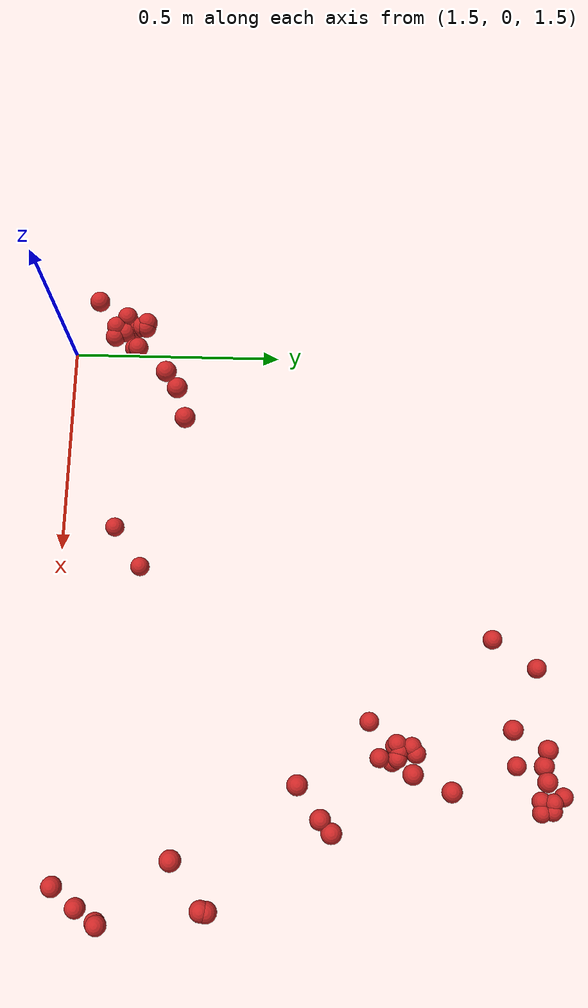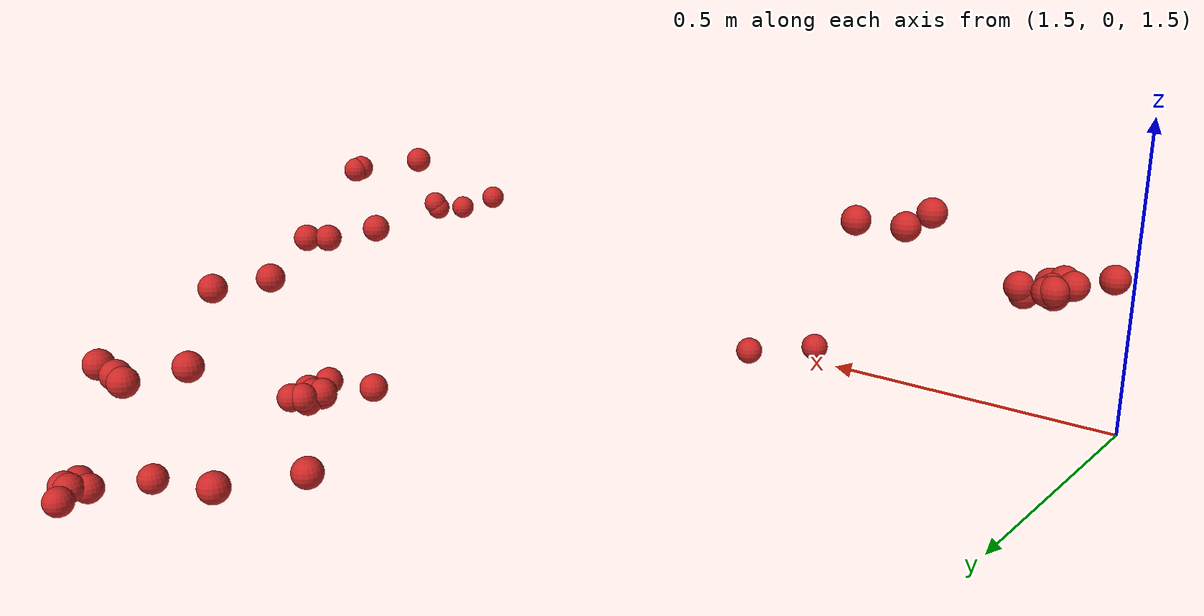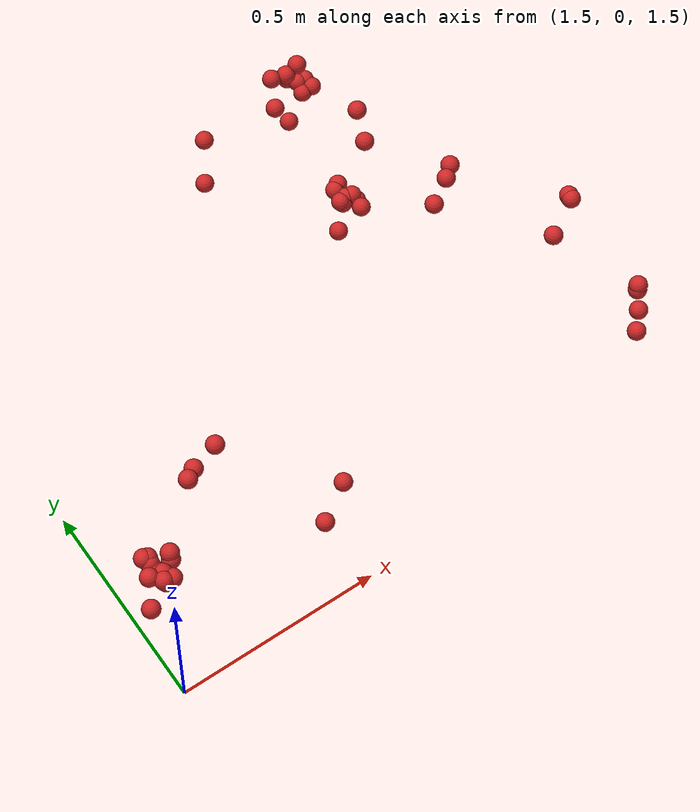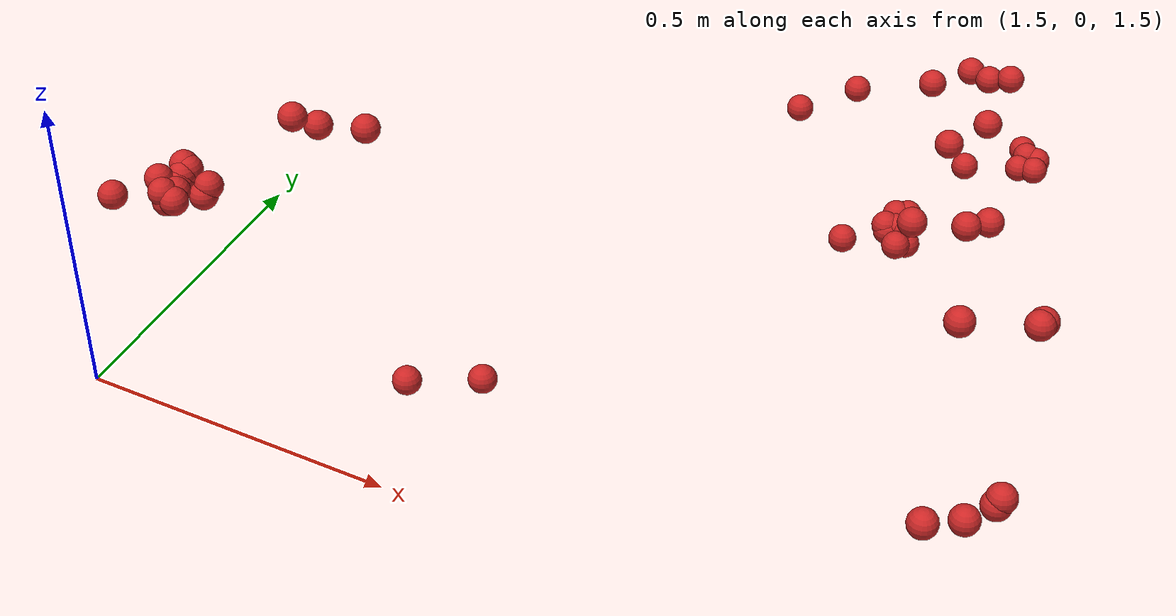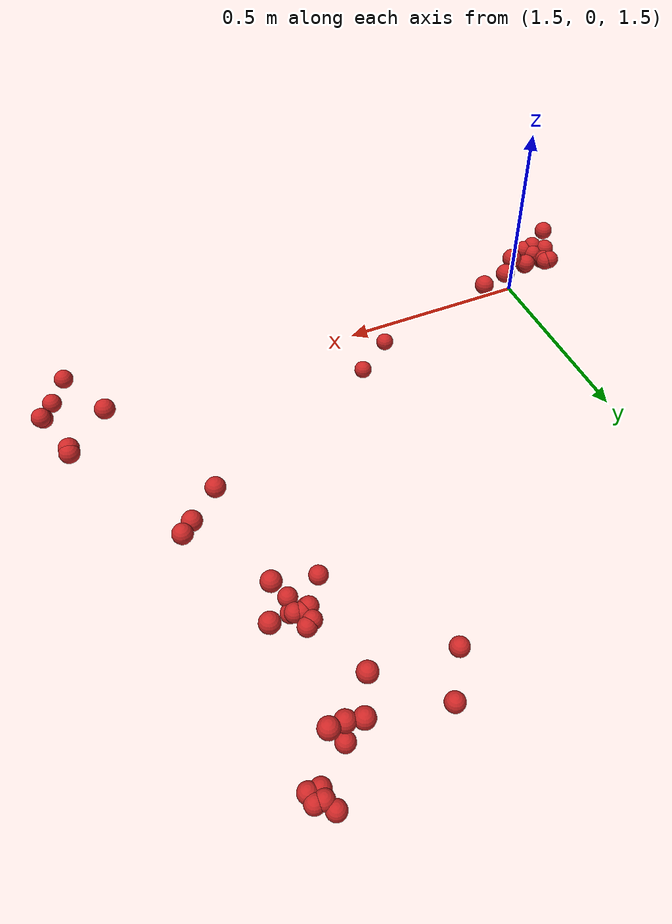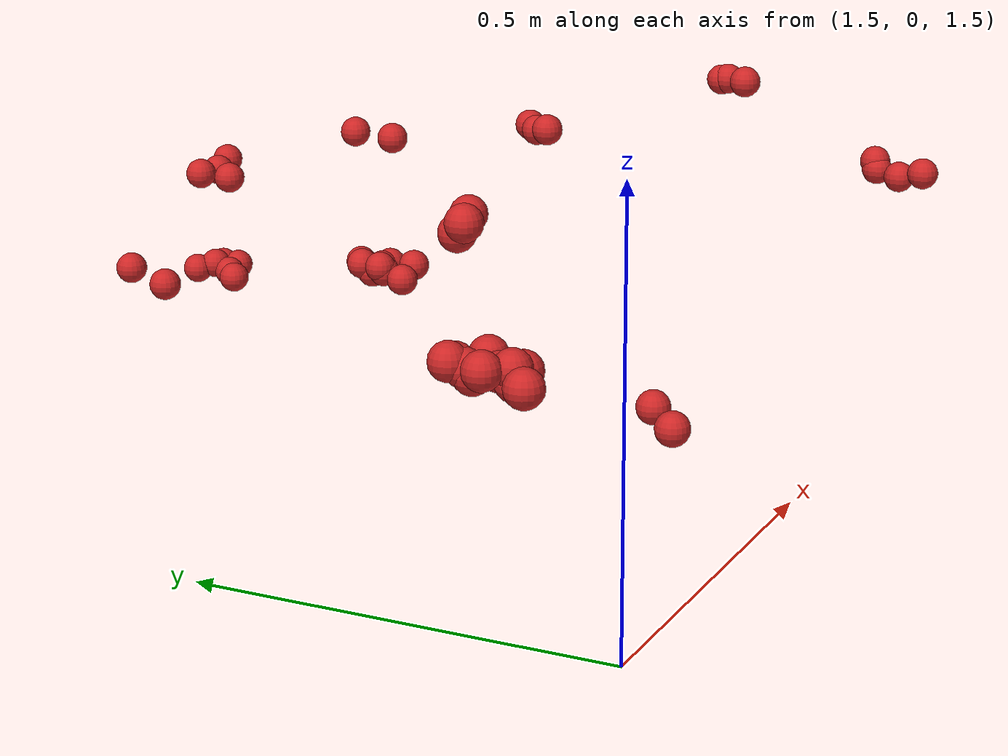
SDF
<sdf version="1.4">
 <model name="fruit_population">
  <static>true</static>
  <link name="fruit_9">
   <pose>2.5626314232241145 0.576750145010323 1.779110310020677 0 0 0</pose>
   <collision name="fruit_collision_9"><geometry><sphere><radius>0.022</radius></sphere></geometry></collision>
   <visual name="visual">
    <geometry><sphere><radius>0.022</radius></sphere></geometry>
    <material><script><name>Gazebo/Red</name></script></material>
   </visual>
   <inertial>
    <mass>0.05</mass>
    <inertia>
     <ixx>9.679999999999999e-06</ixx>
     <ixy>0.0</ixy>
     <ixz>0.0</ixz>
     <iyy>9.679999999999999e-06</iyy>
     <iyz>0.0</iyz>
     <izz>9.679999999999999e-06</izz>
    </inertia>
   </inertial>
   <sensor name="fruit_contact_9" type="contact">
    <plugin name="contact_plugin_9" filename="libcontact_plugin.so"/>
    <contact><collision>fruit_collision_9</collision><topic>fruit_contact_topic_9</topic></contact>
   </sensor>
  </link>
  <link name="fruit_29">
   <pose>1.4982217485301565 0.1065768968228695 1.7779275754086676 0 0 0</pose>
   <collision name="fruit_collision_29"><geometry><sphere><radius>0.022</radius></sphere></geometry></collision>
   <visual name="visual">
    <geometry><sphere><radius>0.022</radius></sphere></geometry>
    <material><script><name>Gazebo/Red</name></script></material>
   </visual>
   <inertial>
    <mass>0.05</mass>
    <inertia>
     <ixx>9.679999999999999e-06</ixx>
     <ixy>0.0</ixy>
     <ixz>0.0</ixz>
     <iyy>9.679999999999999e-06</iyy>
     <iyz>0.0</iyz>
     <izz>9.679999999999999e-06</izz>
    </inertia>
   </inertial>
   <sensor name="fruit_contact_29" type="contact">
    <plugin name="contact_plugin_29" filename="libcontact_plugin.so"/>
    <contact><collision>fruit_collision_29</collision><topic>fruit_contact_topic_29</topic></contact>
   </sensor>
  </link>
  <link name="fruit_32">
   <pose>2.773640843867093 0.08156298062234327 1.7195370686008618 0 0 0</pose>
   <collision name="fruit_collision_32"><geometry><sphere><radius>0.022</radius></sphere></geometry></collision>
   <visual name="visual">
    <geometry><sphere><radius>0.022</radius></sphere></geometry>
    <material><script><name>Gazebo/Red</name></script></material>
   </visual>
   <inertial>
    <mass>0.05</mass>
    <inertia>
     <ixx>9.679999999999999e-06</ixx>
     <ixy>0.0</ixy>
     <ixz>0.0</ixz>
     <iyy>9.679999999999999e-06</iyy>
     <iyz>0.0</iyz>
     <izz>9.679999999999999e-06</izz>
    </inertia>
   </inertial>
   <sensor name="fruit_contact_32" type="contact">
    <plugin name="contact_plugin_32" filename="libcontact_plugin.so"/>
    <contact><collision>fruit_collision_32</collision><topic>fruit_contact_topic_32</topic></contact>
   </sensor>
  </link>
  <link name="fruit_34">
   <pose>2.2146407793347493 1.006819930641305 1.5859462063233678 0 0 0</pose>
   <collision name="fruit_collision_34"><geometry><sphere><radius>0.022</radius></sphere></geometry></collision>
   <visual name="visual">
    <geometry><sphere><radius>0.022</radius></sphere></geometry>
    <material><script><name>Gazebo/Red</name></script></material>
   </visual>
   <inertial>
    <mass>0.05</mass>
    <inertia>
     <ixx>9.679999999999999e-06</ixx>
     <ixy>0.0</ixy>
     <ixz>0.0</ixz>
     <iyy>9.679999999999999e-06</iyy>
     <iyz>0.0</iyz>
     <izz>9.679999999999999e-06</izz>
    </inertia>
   </inertial>
   <sensor name="fruit_contact_34" type="contact">
    <plugin name="contact_plugin_34" filename="libcontact_plugin.so"/>
    <contact><collision>fruit_collision_34</collision><topic>fruit_contact_topic_34</topic></contact>
   </sensor>
  </link>
  <link name="fruit_62">
   <pose>2.430587982907072 1.031769929831832 1.6901392343844412 0 0 0</pose>
   <collision name="fruit_collision_62"><geometry><sphere><radius>0.022</radius></sphere></geometry></collision>
   <visual name="visual">
    <geometry><sphere><radius>0.022</radius></sphere></geometry>
    <material><script><name>Gazebo/Red</name></script></material>
   </visual>
   <inertial>
    <mass>0.05</mass>
    <inertia>
     <ixx>9.679999999999999e-06</ixx>
     <ixy>0.0</ixy>
     <ixz>0.0</ixz>
     <iyy>9.679999999999999e-06</iyy>
     <iyz>0.0</iyz>
     <izz>9.679999999999999e-06</izz>
    </inertia>
   </inertial>
   <sensor name="fruit_contact_62" type="contact">
    <plugin name="contact_plugin_62" filename="libcontact_plugin.so"/>
    <contact><collision>fruit_collision_62</collision><topic>fruit_contact_topic_62</topic></contact>
   </sensor>
  </link>
  <link name="fruit_102">
   <pose>1.9671314398106239 0.1367502395650192 1.5815034556386387 0 0 0</pose>
   <collision name="fruit_collision_102"><geometry><sphere><radius>0.022</radius></sphere></geometry></collision>
   <visual name="visual">
    <geometry><sphere><radius>0.022</radius></sphere></geometry>
    <material><script><name>Gazebo/Red</name></script></material>
   </visual>
   <inertial>
    <mass>0.05</mass>
    <inertia>
     <ixx>9.679999999999999e-06</ixx>
     <ixy>0.0</ixy>
     <ixz>0.0</ixz>
     <iyy>9.679999999999999e-06</iyy>
     <iyz>0.0</iyz>
     <izz>9.679999999999999e-06</izz>
    </inertia>
   </inertial>
   <sensor name="fruit_contact_102" type="contact">
    <plugin name="contact_plugin_102" filename="libcontact_plugin.so"/>
    <contact><collision>fruit_collision_102</collision><topic>fruit_contact_topic_102</topic></contact>
   </sensor>
  </link>
  <link name="fruit_104">
   <pose>1.7086699702461206 0.27829057306447336 1.876934904414292 0 0 0</pose>
   <collision name="fruit_collision_104"><geometry><sphere><radius>0.022</radius></sphere></geometry></collision>
   <visual name="visual">
    <geometry><sphere><radius>0.022</radius></sphere></geometry>
    <material><script><name>Gazebo/Red</name></script></material>
   </visual>
   <inertial>
    <mass>0.05</mass>
    <inertia>
     <ixx>9.679999999999999e-06</ixx>
     <ixy>0.0</ixy>
     <ixz>0.0</ixz>
     <iyy>9.679999999999999e-06</iyy>
     <iyz>0.0</iyz>
     <izz>9.679999999999999e-06</izz>
    </inertia>
   </inertial>
   <sensor name="fruit_contact_104" type="contact">
    <plugin name="contact_plugin_104" filename="libcontact_plugin.so"/>
    <contact><collision>fruit_collision_104</collision><topic>fruit_contact_topic_104</topic></contact>
   </sensor>
  </link>
  <link name="fruit_108">
   <pose>2.7177063027029877 0.3345681849045983 1.8416136712781808 0 0 0</pose>
   <collision name="fruit_collision_108"><geometry><sphere><radius>0.022</radius></sphere></geometry></collision>
   <visual name="visual">
    <geometry><sphere><radius>0.022</radius></sphere></geometry>
    <material><script><name>Gazebo/Red</name></script></material>
   </visual>
   <inertial>
    <mass>0.05</mass>
    <inertia>
     <ixx>9.679999999999999e-06</ixx>
     <ixy>0.0</ixy>
     <ixz>0.0</ixz>
     <iyy>9.679999999999999e-06</iyy>
     <iyz>0.0</iyz>
     <izz>9.679999999999999e-06</izz>
    </inertia>
   </inertial>
   <sensor name="fruit_contact_108" type="contact">
    <plugin name="contact_plugin_108" filename="libcontact_plugin.so"/>
    <contact><collision>fruit_collision_108</collision><topic>fruit_contact_topic_108</topic></contact>
   </sensor>
  </link>
  <link name="fruit_134">
   <pose>2.405121900138279 0.7311783697112243 1.5769891274892416 0 0 0</pose>
   <collision name="fruit_collision_134"><geometry><sphere><radius>0.022</radius></sphere></geometry></collision>
   <visual name="visual">
    <geometry><sphere><radius>0.022</radius></sphere></geometry>
    <material><script><name>Gazebo/Red</name></script></material>
   </visual>
   <inertial>
    <mass>0.05</mass>
    <inertia>
     <ixx>9.679999999999999e-06</ixx>
     <ixy>0.0</ixy>
     <ixz>0.0</ixz>
     <iyy>9.679999999999999e-06</iyy>
     <iyz>0.0</iyz>
     <izz>9.679999999999999e-06</izz>
    </inertia>
   </inertial>
   <sensor name="fruit_contact_134" type="contact">
    <plugin name="contact_plugin_134" filename="libcontact_plugin.so"/>
    <contact><collision>fruit_collision_134</collision><topic>fruit_contact_topic_134</topic></contact>
   </sensor>
  </link>
  <link name="fruit_169">
   <pose>2.5339544847992377 0.8138170823752459 1.7497595894083253 0 0 0</pose>
   <collision name="fruit_collision_169"><geometry><sphere><radius>0.022</radius></sphere></geometry></collision>
   <visual name="visual">
    <geometry><sphere><radius>0.022</radius></sphere></geometry>
    <material><script><name>Gazebo/Red</name></script></material>
   </visual>
   <inertial>
    <mass>0.05</mass>
    <inertia>
     <ixx>9.679999999999999e-06</ixx>
     <ixy>0.0</ixy>
     <ixz>0.0</ixz>
     <iyy>9.679999999999999e-06</iyy>
     <iyz>0.0</iyz>
     <izz>9.679999999999999e-06</izz>
    </inertia>
   </inertial>
   <sensor name="fruit_contact_169" type="contact">
    <plugin name="contact_plugin_169" filename="libcontact_plugin.so"/>
    <contact><collision>fruit_collision_169</collision><topic>fruit_contact_topic_169</topic></contact>
   </sensor>
  </link>
  <link name="fruit_175">
   <pose>2.4907886971746085 1.0678652874753367 1.5176497441475838 0 0 0</pose>
   <collision name="fruit_collision_175"><geometry><sphere><radius>0.022</radius></sphere></geometry></collision>
   <visual name="visual">
    <geometry><sphere><radius>0.022</radius></sphere></geometry>
    <material><script><name>Gazebo/Red</name></script></material>
   </visual>
   <inertial>
    <mass>0.05</mass>
    <inertia>
     <ixx>9.679999999999999e-06</ixx>
     <ixy>0.0</ixy>
     <ixz>0.0</ixz>
     <iyy>9.679999999999999e-06</iyy>
     <iyz>0.0</iyz>
     <izz>9.679999999999999e-06</izz>
    </inertia>
   </inertial>
   <sensor name="fruit_contact_175" type="contact">
    <plugin name="contact_plugin_175" filename="libcontact_plugin.so"/>
    <contact><collision>fruit_collision_175</collision><topic>fruit_contact_topic_175</topic></contact>
   </sensor>
  </link>
  <link name="fruit_193">
   <pose>1.554552033863132 0.1916454480963932 1.763139146387887 0 0 0</pose>
   <collision name="fruit_collision_193"><geometry><sphere><radius>0.022</radius></sphere></geometry></collision>
   <visual name="visual">
    <geometry><sphere><radius>0.022</radius></sphere></geometry>
    <material><script><name>Gazebo/Red</name></script></material>
   </visual>
   <inertial>
    <mass>0.05</mass>
    <inertia>
     <ixx>9.679999999999999e-06</ixx>
     <ixy>0.0</ixy>
     <ixz>0.0</ixz>
     <iyy>9.679999999999999e-06</iyy>
     <iyz>0.0</iyz>
     <izz>9.679999999999999e-06</izz>
    </inertia>
   </inertial>
   <sensor name="fruit_contact_193" type="contact">
    <plugin name="contact_plugin_193" filename="libcontact_plugin.so"/>
    <contact><collision>fruit_collision_193</collision><topic>fruit_contact_topic_193</topic></contact>
   </sensor>
  </link>
  <link name="fruit_196">
   <pose>1.805355579392856 0.32119392716852213 1.8596846636371498 0 0 0</pose>
   <collision name="fruit_collision_196"><geometry><sphere><radius>0.022</radius></sphere></geometry></collision>
   <visual name="visual">
    <geometry><sphere><radius>0.022</radius></sphere></geometry>
    <material><script><name>Gazebo/Red</name></script></material>
   </visual>
   <inertial>
    <mass>0.05</mass>
    <inertia>
     <ixx>9.679999999999999e-06</ixx>
     <ixy>0.0</ixy>
     <ixz>0.0</ixz>
     <iyy>9.679999999999999e-06</iyy>
     <iyz>0.0</iyz>
     <izz>9.679999999999999e-06</izz>
    </inertia>
   </inertial>
   <sensor name="fruit_contact_196" type="contact">
    <plugin name="contact_plugin_196" filename="libcontact_plugin.so"/>
    <contact><collision>fruit_collision_196</collision><topic>fruit_contact_topic_196</topic></contact>
   </sensor>
  </link>
  <link name="fruit_216">
   <pose>2.4571109393866153 0.7895898293658358 1.5695596956966684 0 0 0</pose>
   <collision name="fruit_collision_216"><geometry><sphere><radius>0.022</radius></sphere></geometry></collision>
   <visual name="visual">
    <geometry><sphere><radius>0.022</radius></sphere></geometry>
    <material><script><name>Gazebo/Red</name></script></material>
   </visual>
   <inertial>
    <mass>0.05</mass>
    <inertia>
     <ixx>9.679999999999999e-06</ixx>
     <ixy>0.0</ixy>
     <ixz>0.0</ixz>
     <iyy>9.679999999999999e-06</iyy>
     <iyz>0.0</iyz>
     <izz>9.679999999999999e-06</izz>
    </inertia>
   </inertial>
   <sensor name="fruit_contact_216" type="contact">
    <plugin name="contact_plugin_216" filename="libcontact_plugin.so"/>
    <contact><collision>fruit_collision_216</collision><topic>fruit_contact_topic_216</topic></contact>
   </sensor>
  </link>
  <link name="fruit_243">
   <pose>2.4854916031730916 0.7940407028951671 1.574133143129025 0 0 0</pose>
   <collision name="fruit_collision_243"><geometry><sphere><radius>0.022</radius></sphere></geometry></collision>
   <visual name="visual">
    <geometry><sphere><radius>0.022</radius></sphere></geometry>
    <material><script><name>Gazebo/Red</name></script></material>
   </visual>
   <inertial>
    <mass>0.05</mass>
    <inertia>
     <ixx>9.679999999999999e-06</ixx>
     <ixy>0.0</ixy>
     <ixz>0.0</ixz>
     <iyy>9.679999999999999e-06</iyy>
     <iyz>0.0</iyz>
     <izz>9.679999999999999e-06</izz>
    </inertia>
   </inertial>
   <sensor name="fruit_contact_243" type="contact">
    <plugin name="contact_plugin_243" filename="libcontact_plugin.so"/>
    <contact><collision>fruit_collision_243</collision><topic>fruit_contact_topic_243</topic></contact>
   </sensor>
  </link>
  <link name="fruit_273">
   <pose>2.5934471644312613 1.1243121353627383 1.5054221576634457 0 0 0</pose>
   <collision name="fruit_collision_273"><geometry><sphere><radius>0.022</radius></sphere></geometry></collision>
   <visual name="visual">
    <geometry><sphere><radius>0.022</radius></sphere></geometry>
    <material><script><name>Gazebo/Red</name></script></material>
   </visual>
   <inertial>
    <mass>0.05</mass>
    <inertia>
     <ixx>9.679999999999999e-06</ixx>
     <ixy>0.0</ixy>
     <ixz>0.0</ixz>
     <iyy>9.679999999999999e-06</iyy>
     <iyz>0.0</iyz>
     <izz>9.679999999999999e-06</izz>
    </inertia>
   </inertial>
   <sensor name="fruit_contact_273" type="contact">
    <plugin name="contact_plugin_273" filename="libcontact_plugin.so"/>
    <contact><collision>fruit_collision_273</collision><topic>fruit_contact_topic_273</topic></contact>
   </sensor>
  </link>
  <link name="fruit_282">
   <pose>1.5661933871357865 0.16711493130179564 1.7668570553293979 0 0 0</pose>
   <collision name="fruit_collision_282"><geometry><sphere><radius>0.022</radius></sphere></geometry></collision>
   <visual name="visual">
    <geometry><sphere><radius>0.022</radius></sphere></geometry>
    <material><script><name>Gazebo/Red</name></script></material>
   </visual>
   <inertial>
    <mass>0.05</mass>
    <inertia>
     <ixx>9.679999999999999e-06</ixx>
     <ixy>0.0</ixy>
     <ixz>0.0</ixz>
     <iyy>9.679999999999999e-06</iyy>
     <iyz>0.0</iyz>
     <izz>9.679999999999999e-06</izz>
    </inertia>
   </inertial>
   <sensor name="fruit_contact_282" type="contact">
    <plugin name="contact_plugin_282" filename="libcontact_plugin.so"/>
    <contact><collision>fruit_collision_282</collision><topic>fruit_contact_topic_282</topic></contact>
   </sensor>
  </link>
  <link name="fruit_294">
   <pose>2.811297231282834 0.3957333764937424 1.8241337988021589 0 0 0</pose>
   <collision name="fruit_collision_294"><geometry><sphere><radius>0.022</radius></sphere></geometry></collision>
   <visual name="visual">
    <geometry><sphere><radius>0.022</radius></sphere></geometry>
    <material><script><name>Gazebo/Red</name></script></material>
   </visual>
   <inertial>
    <mass>0.05</mass>
    <inertia>
     <ixx>9.679999999999999e-06</ixx>
     <ixy>0.0</ixy>
     <ixz>0.0</ixz>
     <iyy>9.679999999999999e-06</iyy>
     <iyz>0.0</iyz>
     <izz>9.679999999999999e-06</izz>
    </inertia>
   </inertial>
   <sensor name="fruit_contact_294" type="contact">
    <plugin name="contact_plugin_294" filename="libcontact_plugin.so"/>
    <contact><collision>fruit_collision_294</collision><topic>fruit_contact_topic_294</topic></contact>
   </sensor>
  </link>
  <link name="fruit_366">
   <pose>1.5997868590277688 0.18741582098370907 1.7562469026975982 0 0 0</pose>
   <collision name="fruit_collision_366"><geometry><sphere><radius>0.022</radius></sphere></geometry></collision>
   <visual name="visual">
    <geometry><sphere><radius>0.022</radius></sphere></geometry>
    <material><script><name>Gazebo/Red</name></script></material>
   </visual>
   <inertial>
    <mass>0.05</mass>
    <inertia>
     <ixx>9.679999999999999e-06</ixx>
     <ixy>0.0</ixy>
     <ixz>0.0</ixz>
     <iyy>9.679999999999999e-06</iyy>
     <iyz>0.0</iyz>
     <izz>9.679999999999999e-06</izz>
    </inertia>
   </inertial>
   <sensor name="fruit_contact_366" type="contact">
    <plugin name="contact_plugin_366" filename="libcontact_plugin.so"/>
    <contact><collision>fruit_collision_366</collision><topic>fruit_contact_topic_366</topic></contact>
   </sensor>
  </link>
  <link name="fruit_377">
   <pose>2.4528694474322705 0.7931242831754387 1.5764907644294486 0 0 0</pose>
   <collision name="fruit_collision_377"><geometry><sphere><radius>0.022</radius></sphere></geometry></collision>
   <visual name="visual">
    <geometry><sphere><radius>0.022</radius></sphere></geometry>
    <material><script><name>Gazebo/Red</name></script></material>
   </visual>
   <inertial>
    <mass>0.05</mass>
    <inertia>
     <ixx>9.679999999999999e-06</ixx>
     <ixy>0.0</ixy>
     <ixz>0.0</ixz>
     <iyy>9.679999999999999e-06</iyy>
     <iyz>0.0</iyz>
     <izz>9.679999999999999e-06</izz>
    </inertia>
   </inertial>
   <sensor name="fruit_contact_377" type="contact">
    <plugin name="contact_plugin_377" filename="libcontact_plugin.so"/>
    <contact><collision>fruit_collision_377</collision><topic>fruit_contact_topic_377</topic></contact>
   </sensor>
  </link>
  <link name="fruit_391">
   <pose>2.812977162031718 0.40661068122741717 1.8217007754593737 0 0 0</pose>
   <collision name="fruit_collision_391"><geometry><sphere><radius>0.022</radius></sphere></geometry></collision>
   <visual name="visual">
    <geometry><sphere><radius>0.022</radius></sphere></geometry>
    <material><script><name>Gazebo/Red</name></script></material>
   </visual>
   <inertial>
    <mass>0.05</mass>
    <inertia>
     <ixx>9.679999999999999e-06</ixx>
     <ixy>0.0</ixy>
     <ixz>0.0</ixz>
     <iyy>9.679999999999999e-06</iyy>
     <iyz>0.0</iyz>
     <izz>9.679999999999999e-06</izz>
    </inertia>
   </inertial>
   <sensor name="fruit_contact_391" type="contact">
    <plugin name="contact_plugin_391" filename="libcontact_plugin.so"/>
    <contact><collision>fruit_collision_391</collision><topic>fruit_contact_topic_391</topic></contact>
   </sensor>
  </link>
  <link name="fruit_392">
   <pose>1.5622601417226485 0.14762697278288062 1.7597131452305392 0 0 0</pose>
   <collision name="fruit_collision_392"><geometry><sphere><radius>0.022</radius></sphere></geometry></collision>
   <visual name="visual">
    <geometry><sphere><radius>0.022</radius></sphere></geometry>
    <material><script><name>Gazebo/Red</name></script></material>
   </visual>
   <inertial>
    <mass>0.05</mass>
    <inertia>
     <ixx>9.679999999999999e-06</ixx>
     <ixy>0.0</ixy>
     <ixz>0.0</ixz>
     <iyy>9.679999999999999e-06</iyy>
     <iyz>0.0</iyz>
     <izz>9.679999999999999e-06</izz>
    </inertia>
   </inertial>
   <sensor name="fruit_contact_392" type="contact">
    <plugin name="contact_plugin_392" filename="libcontact_plugin.so"/>
    <contact><collision>fruit_collision_392</collision><topic>fruit_contact_topic_392</topic></contact>
   </sensor>
  </link>
  <link name="fruit_399">
   <pose>2.469047118118122 0.7982157831125458 1.573758856193209 0 0 0</pose>
   <collision name="fruit_collision_399"><geometry><sphere><radius>0.022</radius></sphere></geometry></collision>
   <visual name="visual">
    <geometry><sphere><radius>0.022</radius></sphere></geometry>
    <material><script><name>Gazebo/Red</name></script></material>
   </visual>
   <inertial>
    <mass>0.05</mass>
    <inertia>
     <ixx>9.679999999999999e-06</ixx>
     <ixy>0.0</ixy>
     <ixz>0.0</ixz>
     <iyy>9.679999999999999e-06</iyy>
     <iyz>0.0</iyz>
     <izz>9.679999999999999e-06</izz>
    </inertia>
   </inertial>
   <sensor name="fruit_contact_399" type="contact">
    <plugin name="contact_plugin_399" filename="libcontact_plugin.so"/>
    <contact><collision>fruit_collision_399</collision><topic>fruit_contact_topic_399</topic></contact>
   </sensor>
  </link>
  <link name="fruit_418">
   <pose>2.5676330480539495 0.8943773764885151 1.7450040014197472 0 0 0</pose>
   <collision name="fruit_collision_418"><geometry><sphere><radius>0.022</radius></sphere></geometry></collision>
   <visual name="visual">
    <geometry><sphere><radius>0.022</radius></sphere></geometry>
    <material><script><name>Gazebo/Red</name></script></material>
   </visual>
   <inertial>
    <mass>0.05</mass>
    <inertia>
     <ixx>9.679999999999999e-06</ixx>
     <ixy>0.0</ixy>
     <ixz>0.0</ixz>
     <iyy>9.679999999999999e-06</iyy>
     <iyz>0.0</iyz>
     <izz>9.679999999999999e-06</izz>
    </inertia>
   </inertial>
   <sensor name="fruit_contact_418" type="contact">
    <plugin name="contact_plugin_418" filename="libcontact_plugin.so"/>
    <contact><collision>fruit_collision_418</collision><topic>fruit_contact_topic_418</topic></contact>
   </sensor>
  </link>
  <link name="fruit_422">
   <pose>2.556471649163422 1.1752716729632922 1.5022611332490812 0 0 0</pose>
   <collision name="fruit_collision_422"><geometry><sphere><radius>0.022</radius></sphere></geometry></collision>
   <visual name="visual">
    <geometry><sphere><radius>0.022</radius></sphere></geometry>
    <material><script><name>Gazebo/Red</name></script></material>
   </visual>
   <inertial>
    <mass>0.05</mass>
    <inertia>
     <ixx>9.679999999999999e-06</ixx>
     <ixy>0.0</ixy>
     <ixz>0.0</ixz>
     <iyy>9.679999999999999e-06</iyy>
     <iyz>0.0</iyz>
     <izz>9.679999999999999e-06</izz>
    </inertia>
   </inertial>
   <sensor name="fruit_contact_422" type="contact">
    <plugin name="contact_plugin_422" filename="libcontact_plugin.so"/>
    <contact><collision>fruit_collision_422</collision><topic>fruit_contact_topic_422</topic></contact>
   </sensor>
  </link>
  <link name="fruit_437">
   <pose>1.5341787262428592 0.1710977161659843 1.7764386391555544 0 0 0</pose>
   <collision name="fruit_collision_437"><geometry><sphere><radius>0.022</radius></sphere></geometry></collision>
   <visual name="visual">
    <geometry><sphere><radius>0.022</radius></sphere></geometry>
    <material><script><name>Gazebo/Red</name></script></material>
   </visual>
   <inertial>
    <mass>0.05</mass>
    <inertia>
     <ixx>9.679999999999999e-06</ixx>
     <ixy>0.0</ixy>
     <ixz>0.0</ixz>
     <iyy>9.679999999999999e-06</iyy>
     <iyz>0.0</iyz>
     <izz>9.679999999999999e-06</izz>
    </inertia>
   </inertial>
   <sensor name="fruit_contact_437" type="contact">
    <plugin name="contact_plugin_437" filename="libcontact_plugin.so"/>
    <contact><collision>fruit_collision_437</collision><topic>fruit_contact_topic_437</topic></contact>
   </sensor>
  </link>
  <link name="fruit_438">
   <pose>2.5706028637941287 1.1511100112386106 1.5096095852934275 0 0 0</pose>
   <collision name="fruit_collision_438"><geometry><sphere><radius>0.022</radius></sphere></geometry></collision>
   <visual name="visual">
    <geometry><sphere><radius>0.022</radius></sphere></geometry>
    <material><script><name>Gazebo/Red</name></script></material>
   </visual>
   <inertial>
    <mass>0.05</mass>
    <inertia>
     <ixx>9.679999999999999e-06</ixx>
     <ixy>0.0</ixy>
     <ixz>0.0</ixz>
     <iyy>9.679999999999999e-06</iyy>
     <iyz>0.0</iyz>
     <izz>9.679999999999999e-06</izz>
    </inertia>
   </inertial>
   <sensor name="fruit_contact_438" type="contact">
    <plugin name="contact_plugin_438" filename="libcontact_plugin.so"/>
    <contact><collision>fruit_collision_438</collision><topic>fruit_contact_topic_438</topic></contact>
   </sensor>
  </link>
  <link name="fruit_442">
   <pose>2.4848324217183935 0.7544931616681068 1.5757415086973854 0 0 0</pose>
   <collision name="fruit_collision_442"><geometry><sphere><radius>0.022</radius></sphere></geometry></collision>
   <visual name="visual">
    <geometry><sphere><radius>0.022</radius></sphere></geometry>
    <material><script><name>Gazebo/Red</name></script></material>
   </visual>
   <inertial>
    <mass>0.05</mass>
    <inertia>
     <ixx>9.679999999999999e-06</ixx>
     <ixy>0.0</ixy>
     <ixz>0.0</ixz>
     <iyy>9.679999999999999e-06</iyy>
     <iyz>0.0</iyz>
     <izz>9.679999999999999e-06</izz>
    </inertia>
   </inertial>
   <sensor name="fruit_contact_442" type="contact">
    <plugin name="contact_plugin_442" filename="libcontact_plugin.so"/>
    <contact><collision>fruit_collision_442</collision><topic>fruit_contact_topic_442</topic></contact>
   </sensor>
  </link>
  <link name="fruit_443">
   <pose>2.458564959357545 0.8263373527607168 1.5764341064105456 0 0 0</pose>
   <collision name="fruit_collision_443"><geometry><sphere><radius>0.022</radius></sphere></geometry></collision>
   <visual name="visual">
    <geometry><sphere><radius>0.022</radius></sphere></geometry>
    <material><script><name>Gazebo/Red</name></script></material>
   </visual>
   <inertial>
    <mass>0.05</mass>
    <inertia>
     <ixx>9.679999999999999e-06</ixx>
     <ixy>0.0</ixy>
     <ixz>0.0</ixz>
     <iyy>9.679999999999999e-06</iyy>
     <iyz>0.0</iyz>
     <izz>9.679999999999999e-06</izz>
    </inertia>
   </inertial>
   <sensor name="fruit_contact_443" type="contact">
    <plugin name="contact_plugin_443" filename="libcontact_plugin.so"/>
    <contact><collision>fruit_collision_443</collision><topic>fruit_contact_topic_443</topic></contact>
   </sensor>
  </link>
  <link name="fruit_446">
   <pose>2.4703144322160044 1.1068414612971273 1.6798187919368994 0 0 0</pose>
   <collision name="fruit_collision_446"><geometry><sphere><radius>0.022</radius></sphere></geometry></collision>
   <visual name="visual">
    <geometry><sphere><radius>0.022</radius></sphere></geometry>
    <material><script><name>Gazebo/Red</name></script></material>
   </visual>
   <inertial>
    <mass>0.05</mass>
    <inertia>
     <ixx>9.679999999999999e-06</ixx>
     <ixy>0.0</ixy>
     <ixz>0.0</ixz>
     <iyy>9.679999999999999e-06</iyy>
     <iyz>0.0</iyz>
     <izz>9.679999999999999e-06</izz>
    </inertia>
   </inertial>
   <sensor name="fruit_contact_446" type="contact">
    <plugin name="contact_plugin_446" filename="libcontact_plugin.so"/>
    <contact><collision>fruit_collision_446</collision><topic>fruit_contact_topic_446</topic></contact>
   </sensor>
  </link>
  <link name="fruit_468">
   <pose>2.6298017585631466 0.6247634751972966 1.7609411051942667 0 0 0</pose>
   <collision name="fruit_collision_468"><geometry><sphere><radius>0.022</radius></sphere></geometry></collision>
   <visual name="visual">
    <geometry><sphere><radius>0.022</radius></sphere></geometry>
    <material><script><name>Gazebo/Red</name></script></material>
   </visual>
   <inertial>
    <mass>0.05</mass>
    <inertia>
     <ixx>9.679999999999999e-06</ixx>
     <ixy>0.0</ixy>
     <ixz>0.0</ixz>
     <iyy>9.679999999999999e-06</iyy>
     <iyz>0.0</iyz>
     <izz>9.679999999999999e-06</izz>
    </inertia>
   </inertial>
   <sensor name="fruit_contact_468" type="contact">
    <plugin name="contact_plugin_468" filename="libcontact_plugin.so"/>
    <contact><collision>fruit_collision_468</collision><topic>fruit_contact_topic_468</topic></contact>
   </sensor>
  </link>
  <link name="fruit_475">
   <pose>1.557327387270875 0.21306942138859805 1.7735713837720137 0 0 0</pose>
   <collision name="fruit_collision_475"><geometry><sphere><radius>0.022</radius></sphere></geometry></collision>
   <visual name="visual">
    <geometry><sphere><radius>0.022</radius></sphere></geometry>
    <material><script><name>Gazebo/Red</name></script></material>
   </visual>
   <inertial>
    <mass>0.05</mass>
    <inertia>
     <ixx>9.679999999999999e-06</ixx>
     <ixy>0.0</ixy>
     <ixz>0.0</ixz>
     <iyy>9.679999999999999e-06</iyy>
     <iyz>0.0</iyz>
     <izz>9.679999999999999e-06</izz>
    </inertia>
   </inertial>
   <sensor name="fruit_contact_475" type="contact">
    <plugin name="contact_plugin_475" filename="libcontact_plugin.so"/>
    <contact><collision>fruit_collision_475</collision><topic>fruit_contact_topic_475</topic></contact>
   </sensor>
  </link>
  <link name="fruit_476">
   <pose>2.815222589175122 0.12887510956511838 1.7009470365906467 0 0 0</pose>
   <collision name="fruit_collision_476"><geometry><sphere><radius>0.022</radius></sphere></geometry></collision>
   <visual name="visual">
    <geometry><sphere><radius>0.022</radius></sphere></geometry>
    <material><script><name>Gazebo/Red</name></script></material>
   </visual>
   <inertial>
    <mass>0.05</mass>
    <inertia>
     <ixx>9.679999999999999e-06</ixx>
     <ixy>0.0</ixy>
     <ixz>0.0</ixz>
     <iyy>9.679999999999999e-06</iyy>
     <iyz>0.0</iyz>
     <izz>9.679999999999999e-06</izz>
    </inertia>
   </inertial>
   <sensor name="fruit_contact_476" type="contact">
    <plugin name="contact_plugin_476" filename="libcontact_plugin.so"/>
    <contact><collision>fruit_collision_476</collision><topic>fruit_contact_topic_476</topic></contact>
   </sensor>
  </link>
  <link name="fruit_503">
   <pose>1.5474802918007278 0.21576937375033847 1.7766650762688856 0 0 0</pose>
   <collision name="fruit_collision_503"><geometry><sphere><radius>0.022</radius></sphere></geometry></collision>
   <visual name="visual">
    <geometry><sphere><radius>0.022</radius></sphere></geometry>
    <material><script><name>Gazebo/Red</name></script></material>
   </visual>
   <inertial>
    <mass>0.05</mass>
    <inertia>
     <ixx>9.679999999999999e-06</ixx>
     <ixy>0.0</ixy>
     <ixz>0.0</ixz>
     <iyy>9.679999999999999e-06</iyy>
     <iyz>0.0</iyz>
     <izz>9.679999999999999e-06</izz>
    </inertia>
   </inertial>
   <sensor name="fruit_contact_503" type="contact">
    <plugin name="contact_plugin_503" filename="libcontact_plugin.so"/>
    <contact><collision>fruit_collision_503</collision><topic>fruit_contact_topic_503</topic></contact>
   </sensor>
  </link>
  <link name="fruit_539">
   <pose>1.5569382439777595 0.14743306366583914 1.775523498747279 0 0 0</pose>
   <collision name="fruit_collision_539"><geometry><sphere><radius>0.022</radius></sphere></geometry></collision>
   <visual name="visual">
    <geometry><sphere><radius>0.022</radius></sphere></geometry>
    <material><script><name>Gazebo/Red</name></script></material>
   </visual>
   <inertial>
    <mass>0.05</mass>
    <inertia>
     <ixx>9.679999999999999e-06</ixx>
     <ixy>0.0</ixy>
     <ixz>0.0</ixz>
     <iyy>9.679999999999999e-06</iyy>
     <iyz>0.0</iyz>
     <izz>9.679999999999999e-06</izz>
    </inertia>
   </inertial>
   <sensor name="fruit_contact_539" type="contact">
    <plugin name="contact_plugin_539" filename="libcontact_plugin.so"/>
    <contact><collision>fruit_collision_539</collision><topic>fruit_contact_topic_539</topic></contact>
   </sensor>
  </link>
  <link name="fruit_581">
   <pose>2.6564559441391915 0.647914784507285 1.7613627538494478 0 0 0</pose>
   <collision name="fruit_collision_581"><geometry><sphere><radius>0.022</radius></sphere></geometry></collision>
   <visual name="visual">
    <geometry><sphere><radius>0.022</radius></sphere></geometry>
    <material><script><name>Gazebo/Red</name></script></material>
   </visual>
   <inertial>
    <mass>0.05</mass>
    <inertia>
     <ixx>9.679999999999999e-06</ixx>
     <ixy>0.0</ixy>
     <ixz>0.0</ixz>
     <iyy>9.679999999999999e-06</iyy>
     <iyz>0.0</iyz>
     <izz>9.679999999999999e-06</izz>
    </inertia>
   </inertial>
   <sensor name="fruit_contact_581" type="contact">
    <plugin name="contact_plugin_581" filename="libcontact_plugin.so"/>
    <contact><collision>fruit_collision_581</collision><topic>fruit_contact_topic_581</topic></contact>
   </sensor>
  </link>
  <link name="fruit_589">
   <pose>1.554567910383796 0.20147302914026288 1.7698346729897945 0 0 0</pose>
   <collision name="fruit_collision_589"><geometry><sphere><radius>0.022</radius></sphere></geometry></collision>
   <visual name="visual">
    <geometry><sphere><radius>0.022</radius></sphere></geometry>
    <material><script><name>Gazebo/Red</name></script></material>
   </visual>
   <inertial>
    <mass>0.05</mass>
    <inertia>
     <ixx>9.679999999999999e-06</ixx>
     <ixy>0.0</ixy>
     <ixz>0.0</ixz>
     <iyy>9.679999999999999e-06</iyy>
     <iyz>0.0</iyz>
     <izz>9.679999999999999e-06</izz>
    </inertia>
   </inertial>
   <sensor name="fruit_contact_589" type="contact">
    <plugin name="contact_plugin_589" filename="libcontact_plugin.so"/>
    <contact><collision>fruit_collision_589</collision><topic>fruit_contact_topic_589</topic></contact>
   </sensor>
  </link>
  <link name="fruit_591">
   <pose>2.5668774750753034 1.1245544366137479 1.5009255878240428 0 0 0</pose>
   <collision name="fruit_collision_591"><geometry><sphere><radius>0.022</radius></sphere></geometry></collision>
   <visual name="visual">
    <geometry><sphere><radius>0.022</radius></sphere></geometry>
    <material><script><name>Gazebo/Red</name></script></material>
   </visual>
   <inertial>
    <mass>0.05</mass>
    <inertia>
     <ixx>9.679999999999999e-06</ixx>
     <ixy>0.0</ixy>
     <ixz>0.0</ixz>
     <iyy>9.679999999999999e-06</iyy>
     <iyz>0.0</iyz>
     <izz>9.679999999999999e-06</izz>
    </inertia>
   </inertial>
   <sensor name="fruit_contact_591" type="contact">
    <plugin name="contact_plugin_591" filename="libcontact_plugin.so"/>
    <contact><collision>fruit_collision_591</collision><topic>fruit_contact_topic_591</topic></contact>
   </sensor>
  </link>
  <link name="fruit_630">
   <pose>2.5895853204426387 1.1492093969926134 1.5067052472338724 0 0 0</pose>
   <collision name="fruit_collision_630"><geometry><sphere><radius>0.022</radius></sphere></geometry></collision>
   <visual name="visual">
    <geometry><sphere><radius>0.022</radius></sphere></geometry>
    <material><script><name>Gazebo/Red</name></script></material>
   </visual>
   <inertial>
    <mass>0.05</mass>
    <inertia>
     <ixx>9.679999999999999e-06</ixx>
     <ixy>0.0</ixy>
     <ixz>0.0</ixz>
     <iyy>9.679999999999999e-06</iyy>
     <iyz>0.0</iyz>
     <izz>9.679999999999999e-06</izz>
    </inertia>
   </inertial>
   <sensor name="fruit_contact_630" type="contact">
    <plugin name="contact_plugin_630" filename="libcontact_plugin.so"/>
    <contact><collision>fruit_collision_630</collision><topic>fruit_contact_topic_630</topic></contact>
   </sensor>
  </link>
  <link name="fruit_686">
   <pose>2.5386135435213 1.1021732597215768 1.6884251846115772 0 0 0</pose>
   <collision name="fruit_collision_686"><geometry><sphere><radius>0.022</radius></sphere></geometry></collision>
   <visual name="visual">
    <geometry><sphere><radius>0.022</radius></sphere></geometry>
    <material><script><name>Gazebo/Red</name></script></material>
   </visual>
   <inertial>
    <mass>0.05</mass>
    <inertia>
     <ixx>9.679999999999999e-06</ixx>
     <ixy>0.0</ixy>
     <ixz>0.0</ixz>
     <iyy>9.679999999999999e-06</iyy>
     <iyz>0.0</iyz>
     <izz>9.679999999999999e-06</izz>
    </inertia>
   </inertial>
   <sensor name="fruit_contact_686" type="contact">
    <plugin name="contact_plugin_686" filename="libcontact_plugin.so"/>
    <contact><collision>fruit_collision_686</collision><topic>fruit_contact_topic_686</topic></contact>
   </sensor>
  </link>
  <link name="fruit_687">
   <pose>2.5046223002470196 1.0977673993620798 1.6793410237766448 0 0 0</pose>
   <collision name="fruit_collision_687"><geometry><sphere><radius>0.022</radius></sphere></geometry></collision>
   <visual name="visual">
    <geometry><sphere><radius>0.022</radius></sphere></geometry>
    <material><script><name>Gazebo/Red</name></script></material>
   </visual>
   <inertial>
    <mass>0.05</mass>
    <inertia>
     <ixx>9.679999999999999e-06</ixx>
     <ixy>0.0</ixy>
     <ixz>0.0</ixz>
     <iyy>9.679999999999999e-06</iyy>
     <iyz>0.0</iyz>
     <izz>9.679999999999999e-06</izz>
    </inertia>
   </inertial>
   <sensor name="fruit_contact_687" type="contact">
    <plugin name="contact_plugin_687" filename="libcontact_plugin.so"/>
    <contact><collision>fruit_collision_687</collision><topic>fruit_contact_topic_687</topic></contact>
   </sensor>
  </link>
  <link name="fruit_692">
   <pose>2.8477466857474054 0.17571449252230437 1.7131313588512742 0 0 0</pose>
   <collision name="fruit_collision_692"><geometry><sphere><radius>0.022</radius></sphere></geometry></collision>
   <visual name="visual">
    <geometry><sphere><radius>0.022</radius></sphere></geometry>
    <material><script><name>Gazebo/Red</name></script></material>
   </visual>
   <inertial>
    <mass>0.05</mass>
    <inertia>
     <ixx>9.679999999999999e-06</ixx>
     <ixy>0.0</ixy>
     <ixz>0.0</ixz>
     <iyy>9.679999999999999e-06</iyy>
     <iyz>0.0</iyz>
     <izz>9.679999999999999e-06</izz>
    </inertia>
   </inertial>
   <sensor name="fruit_contact_692" type="contact">
    <plugin name="contact_plugin_692" filename="libcontact_plugin.so"/>
    <contact><collision>fruit_collision_692</collision><topic>fruit_contact_topic_692</topic></contact>
   </sensor>
  </link>
  <link name="fruit_710">
   <pose>1.7366353866214665 0.30073903552517667 1.856739381708829 0 0 0</pose>
   <collision name="fruit_collision_710"><geometry><sphere><radius>0.022</radius></sphere></geometry></collision>
   <visual name="visual">
    <geometry><sphere><radius>0.022</radius></sphere></geometry>
    <material><script><name>Gazebo/Red</name></script></material>
   </visual>
   <inertial>
    <mass>0.05</mass>
    <inertia>
     <ixx>9.679999999999999e-06</ixx>
     <ixy>0.0</ixy>
     <ixz>0.0</ixz>
     <iyy>9.679999999999999e-06</iyy>
     <iyz>0.0</iyz>
     <izz>9.679999999999999e-06</izz>
    </inertia>
   </inertial>
   <sensor name="fruit_contact_710" type="contact">
    <plugin name="contact_plugin_710" filename="libcontact_plugin.so"/>
    <contact><collision>fruit_collision_710</collision><topic>fruit_contact_topic_710</topic></contact>
   </sensor>
  </link>
  <link name="fruit_746">
   <pose>2.46446780425677 0.8124338324370357 1.564237871836476 0 0 0</pose>
   <collision name="fruit_collision_746"><geometry><sphere><radius>0.022</radius></sphere></geometry></collision>
   <visual name="visual">
    <geometry><sphere><radius>0.022</radius></sphere></geometry>
    <material><script><name>Gazebo/Red</name></script></material>
   </visual>
   <inertial>
    <mass>0.05</mass>
    <inertia>
     <ixx>9.679999999999999e-06</ixx>
     <ixy>0.0</ixy>
     <ixz>0.0</ixz>
     <iyy>9.679999999999999e-06</iyy>
     <iyz>0.0</iyz>
     <izz>9.679999999999999e-06</izz>
    </inertia>
   </inertial>
   <sensor name="fruit_contact_746" type="contact">
    <plugin name="contact_plugin_746" filename="libcontact_plugin.so"/>
    <contact><collision>fruit_collision_746</collision><topic>fruit_contact_topic_746</topic></contact>
   </sensor>
  </link>
  <link name="fruit_757">
   <pose>2.8431043160897924 0.17109790418849471 1.7025441055302644 0 0 0</pose>
   <collision name="fruit_collision_757"><geometry><sphere><radius>0.022</radius></sphere></geometry></collision>
   <visual name="visual">
    <geometry><sphere><radius>0.022</radius></sphere></geometry>
    <material><script><name>Gazebo/Red</name></script></material>
   </visual>
   <inertial>
    <mass>0.05</mass>
    <inertia>
     <ixx>9.679999999999999e-06</ixx>
     <ixy>0.0</ixy>
     <ixz>0.0</ixz>
     <iyy>9.679999999999999e-06</iyy>
     <iyz>0.0</iyz>
     <izz>9.679999999999999e-06</izz>
    </inertia>
   </inertial>
   <sensor name="fruit_contact_757" type="contact">
    <plugin name="contact_plugin_757" filename="libcontact_plugin.so"/>
    <contact><collision>fruit_collision_757</collision><topic>fruit_contact_topic_757</topic></contact>
   </sensor>
  </link>
  <link name="fruit_759">
   <pose>1.603975901928076 0.197316093296834 1.7695059175207184 0 0 0</pose>
   <collision name="fruit_collision_759"><geometry><sphere><radius>0.022</radius></sphere></geometry></collision>
   <visual name="visual">
    <geometry><sphere><radius>0.022</radius></sphere></geometry>
    <material><script><name>Gazebo/Red</name></script></material>
   </visual>
   <inertial>
    <mass>0.05</mass>
    <inertia>
     <ixx>9.679999999999999e-06</ixx>
     <ixy>0.0</ixy>
     <ixz>0.0</ixz>
     <iyy>9.679999999999999e-06</iyy>
     <iyz>0.0</iyz>
     <izz>9.679999999999999e-06</izz>
    </inertia>
   </inertial>
   <sensor name="fruit_contact_759" type="contact">
    <plugin name="contact_plugin_759" filename="libcontact_plugin.so"/>
    <contact><collision>fruit_collision_759</collision><topic>fruit_contact_topic_759</topic></contact>
   </sensor>
  </link>
  <link name="fruit_761">
   <pose>2.4915104344652406 0.7837522874164843 1.5593196673784488 0 0 0</pose>
   <collision name="fruit_collision_761"><geometry><sphere><radius>0.022</radius></sphere></geometry></collision>
   <visual name="visual">
    <geometry><sphere><radius>0.022</radius></sphere></geometry>
    <material><script><name>Gazebo/Red</name></script></material>
   </visual>
   <inertial>
    <mass>0.05</mass>
    <inertia>
     <ixx>9.679999999999999e-06</ixx>
     <ixy>0.0</ixy>
     <ixz>0.0</ixz>
     <iyy>9.679999999999999e-06</iyy>
     <iyz>0.0</iyz>
     <izz>9.679999999999999e-06</izz>
    </inertia>
   </inertial>
   <sensor name="fruit_contact_761" type="contact">
    <plugin name="contact_plugin_761" filename="libcontact_plugin.so"/>
    <contact><collision>fruit_collision_761</collision><topic>fruit_contact_topic_761</topic></contact>
   </sensor>
  </link>
  <link name="fruit_775">
   <pose>2.4738665939551314 0.836001106003273 1.5749282302867322 0 0 0</pose>
   <collision name="fruit_collision_775"><geometry><sphere><radius>0.022</radius></sphere></geometry></collision>
   <visual name="visual">
    <geometry><sphere><radius>0.022</radius></sphere></geometry>
    <material><script><name>Gazebo/Red</name></script></material>
   </visual>
   <inertial>
    <mass>0.05</mass>
    <inertia>
     <ixx>9.679999999999999e-06</ixx>
     <ixy>0.0</ixy>
     <ixz>0.0</ixz>
     <iyy>9.679999999999999e-06</iyy>
     <iyz>0.0</iyz>
     <izz>9.679999999999999e-06</izz>
    </inertia>
   </inertial>
   <sensor name="fruit_contact_775" type="contact">
    <plugin name="contact_plugin_775" filename="libcontact_plugin.so"/>
    <contact><collision>fruit_collision_775</collision><topic>fruit_contact_topic_775</topic></contact>
   </sensor>
  </link>
  <link name="fruit_812">
   <pose>2.2778397360821376 1.1060793343145525 1.581972726331109 0 0 0</pose>
   <collision name="fruit_collision_812"><geometry><sphere><radius>0.022</radius></sphere></geometry></collision>
   <visual name="visual">
    <geometry><sphere><radius>0.022</radius></sphere></geometry>
    <material><script><name>Gazebo/Red</name></script></material>
   </visual>
   <inertial>
    <mass>0.05</mass>
    <inertia>
     <ixx>9.679999999999999e-06</ixx>
     <ixy>0.0</ixy>
     <ixz>0.0</ixz>
     <iyy>9.679999999999999e-06</iyy>
     <iyz>0.0</iyz>
     <izz>9.679999999999999e-06</izz>
    </inertia>
   </inertial>
   <sensor name="fruit_contact_812" type="contact">
    <plugin name="contact_plugin_812" filename="libcontact_plugin.so"/>
    <contact><collision>fruit_collision_812</collision><topic>fruit_contact_topic_812</topic></contact>
   </sensor>
  </link>
  <link name="fruit_816">
   <pose>1.5780956932314574 0.14483053678293067 1.7677817253930728 0 0 0</pose>
   <collision name="fruit_collision_816"><geometry><sphere><radius>0.022</radius></sphere></geometry></collision>
   <visual name="visual">
    <geometry><sphere><radius>0.022</radius></sphere></geometry>
    <material><script><name>Gazebo/Red</name></script></material>
   </visual>
   <inertial>
    <mass>0.05</mass>
    <inertia>
     <ixx>9.679999999999999e-06</ixx>
     <ixy>0.0</ixy>
     <ixz>0.0</ixz>
     <iyy>9.679999999999999e-06</iyy>
     <iyz>0.0</iyz>
     <izz>9.679999999999999e-06</izz>
    </inertia>
   </inertial>
   <sensor name="fruit_contact_816" type="contact">
    <plugin name="contact_plugin_816" filename="libcontact_plugin.so"/>
    <contact><collision>fruit_collision_816</collision><topic>fruit_contact_topic_816</topic></contact>
   </sensor>
  </link>
  <link name="fruit_817">
   <pose>2.058007181342611 0.19871852589550087 1.5712362189731386 0 0 0</pose>
   <collision name="fruit_collision_817"><geometry><sphere><radius>0.022</radius></sphere></geometry></collision>
   <visual name="visual">
    <geometry><sphere><radius>0.022</radius></sphere></geometry>
    <material><script><name>Gazebo/Red</name></script></material>
   </visual>
   <inertial>
    <mass>0.05</mass>
    <inertia>
     <ixx>9.679999999999999e-06</ixx>
     <ixy>0.0</ixy>
     <ixz>0.0</ixz>
     <iyy>9.679999999999999e-06</iyy>
     <iyz>0.0</iyz>
     <izz>9.679999999999999e-06</izz>
    </inertia>
   </inertial>
   <sensor name="fruit_contact_817" type="contact">
    <plugin name="contact_plugin_817" filename="libcontact_plugin.so"/>
    <contact><collision>fruit_collision_817</collision><topic>fruit_contact_topic_817</topic></contact>
   </sensor>
  </link>
 </model>
</sdf>
